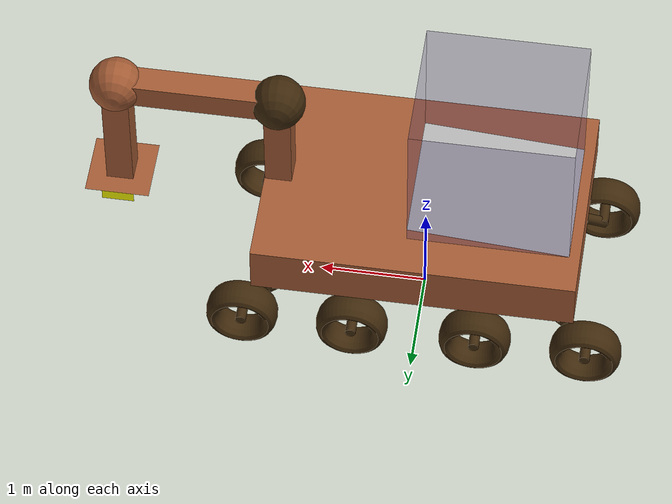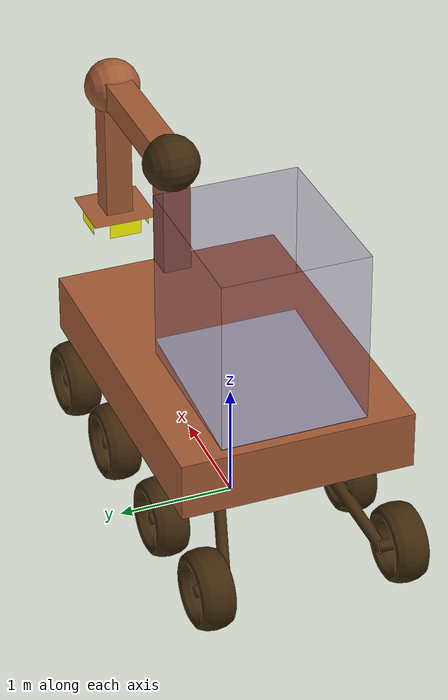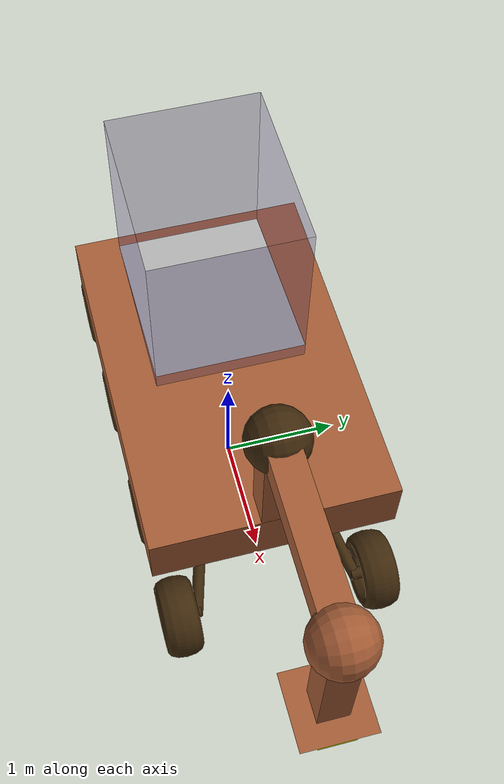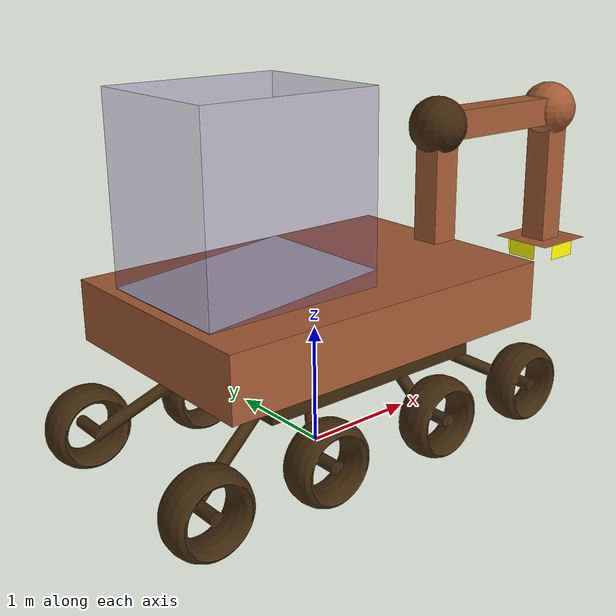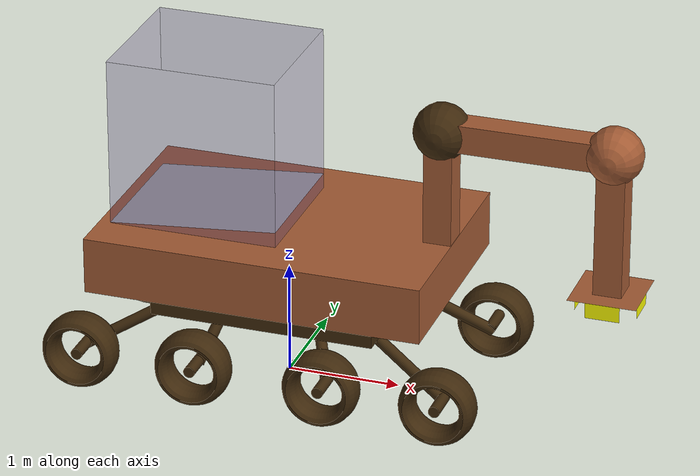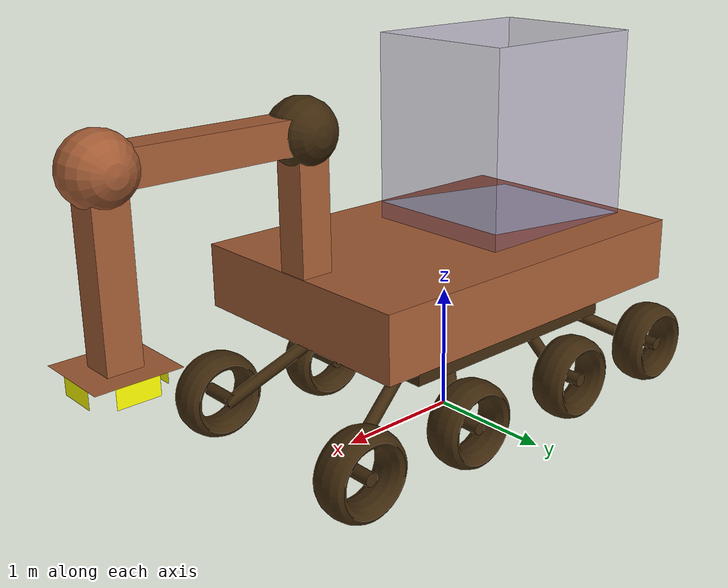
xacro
<?xml version="1.0"?>
<!-- created with Phobos 1.0.1 "Capricious Choutengan" -->
<robot name="robot" xmlns:xacro="http://wiki.ros.org/xacro">

    <link name="box_arm_1_">
      <inertial>
        <origin xyz="0 0 0" rpy="0 0 0"/>
        <mass value="10.0"/>
        <inertia ixx="0.88542" ixy="0" ixz="0" iyy="0.88542" iyz="0" izz="0.10417"/>
      </inertial>
      <visual name="box_arm_1">
        <origin xyz="0 0 0" rpy="0 0 0"/>
        <geometry>
          <box size="0.25 0.25 1.0"/>
        </geometry>
        <material name="Material"/>
      </visual>
      <collision name="box_arm_1">
        <origin xyz="0 0 0" rpy="0 0 0"/>
        <geometry>
          <box size="0.25 0.25 1.0"/>
        </geometry>
      </collision>
    </link>

    <link name="box_arm_2_">
      <inertial>
        <origin xyz="0 0 0" rpy="0 0 0"/>
        <mass value="3.0"/>
        <inertia ixx="0.05208" ixy="0" ixz="0" iyy="0.96354" iyz="0" izz="0.96354"/>
      </inertial>
      <visual name="box_arm_2">
        <origin xyz="0 0 0" rpy="-1.5708 0 0"/>
        <geometry>
          <box size="0.25 0.25 1.5"/>
        </geometry>
        <material name="Material"/>
      </visual>
      <collision name="box_arm_2">
        <origin xyz="0 0 0" rpy="-1.5708 0 0"/>
        <geometry>
          <box size="0.25 0.25 1.5"/>
        </geometry>
      </collision>
    </link>

    <link name="box_arm_3_">
      <inertial>
        <origin xyz="0 0 0" rpy="0 0 0"/>
        <mass value="3.0"/>
        <inertia ixx="0.62604" ixy="0" ixz="0" iyy="0.62604" iyz="0" izz="0.05208"/>
      </inertial>
      <visual name="box_arm_3">
        <origin xyz="0 0 0" rpy="-1.5708 0 0"/>
        <geometry>
          <box size="0.25 0.25 1.2"/>
        </geometry>
        <material name="Material"/>
      </visual>
      <collision name="box_arm_3">
        <origin xyz="0 0 0" rpy="-1.5708 0 0"/>
        <geometry>
          <box size="0.25 0.25 1.2"/>
        </geometry>
      </collision>
    </link>

    <link name="box_botton">
      <inertial>
        <origin xyz="0 0 0" rpy="0 0 0"/>
        <mass value="100.0"/>
        <inertia ixx="62.5" ixy="0" ixz="0" iyy="33.61816" iyz="0" izz="0.61035"/>
      </inertial>
      <visual name="Cube.001">
        <origin xyz="0 0 0" rpy="0 0 0"/>
        <geometry>
          <box size="2.0 1.5 0.5"/>
        </geometry>
        <material name="Material.001"/>
      </visual>
      <collision name="Cube.001">
        <origin xyz="0 0 0" rpy="0 0 0"/>
        <geometry>
          <box size="2.0 1.5 0.5"/>
        </geometry>
      </collision>
    </link>

    <link name="base_link">
      <inertial>
        <origin xyz="0 0 0" rpy="0 0 0"/>
        <mass value="150.0"/>
        <inertia ixx="896.48435" ixy="0" ixz="0" iyy="385.41666" iyz="0" izz="2.11589"/>
      </inertial>
      <visual name="Cube">
        <origin xyz="0 0 0" rpy="0 0 0"/>
        <geometry>
          <box size="3.0 2.0 0.5"/>
        </geometry>
        <material name="Material"/>
      </visual>
      <collision name="Cube">
        <origin xyz="0 0 0" rpy="0 0 0"/>
        <geometry>
          <box size="3.0 2.0 0.5"/>
        </geometry>
      </collision>
    </link>

    <link name="base_footprint">
      <inertial>
        <origin xyz="0 0 0" rpy="0 0 0"/>
        <mass value="0.1"/>
        <inertia ixx="0.001" ixy="0" ixz="0" iyy="0.001" iyz="0" izz="0.001"/>
      </inertial>
    </link>

    <link name="c2_felt_front_back_">
      <inertial>
        <origin xyz="0 0 0" rpy="0 0 0"/>
        <mass value="1.5"/>
        <inertia ixx="2e-05" ixy="0" ixz="0" iyy="2e-05" iyz="0" izz="8e-05"/>
      </inertial>
      <visual name="left_front_back2">
        <origin xyz="0 0 0" rpy="0 0 0"/>
        <geometry>
          <cylinder radius="0.05" length="0.3"/>
        </geometry>
        <material name="Material.001"/>
      </visual>
      <collision name="left_front_back2">
        <origin xyz="0 0 0" rpy="0 0 0"/>
        <geometry>
          <box size="0.1 0.1 0.3"/>
        </geometry>
      </collision>
    </link>

    <link name="c2_left_back_back_">
      <inertial>
        <origin xyz="0 0 0" rpy="0 0 0"/>
        <mass value="1.5"/>
        <inertia ixx="2e-05" ixy="0" ixz="0" iyy="2e-05" iyz="0" izz="8e-05"/>
      </inertial>
      <visual name="left_back_back2">
        <origin xyz="0 0 0" rpy="0 0 0"/>
        <geometry>
          <cylinder radius="0.05" length="0.3"/>
        </geometry>
        <material name="Material.001"/>
      </visual>
      <collision name="left_back_back2">
        <origin xyz="0 0 0" rpy="0 0 0"/>
        <geometry>
          <box size="0.1 0.1 0.3"/>
        </geometry>
      </collision>
    </link>

    <link name="c2_left_back_front_">
      <inertial>
        <origin xyz="0 0 0" rpy="0 0 0"/>
        <mass value="1.5"/>
        <inertia ixx="2e-05" ixy="0" ixz="0" iyy="2e-05" iyz="0" izz="8e-05"/>
      </inertial>
      <visual name="left_back_front2">
        <origin xyz="0 0 0" rpy="0 0 0"/>
        <geometry>
          <cylinder radius="0.05" length="0.3"/>
        </geometry>
        <material name="Material.001"/>
      </visual>
      <collision name="left_back_front2">
        <origin xyz="0 0 0" rpy="0 0 0"/>
        <geometry>
          <box size="0.1 0.1 0.3"/>
        </geometry>
      </collision>
    </link>

    <link name="c2_left_front_front_">
      <inertial>
        <origin xyz="0 0 0" rpy="0 0 0"/>
        <mass value="1.5"/>
        <inertia ixx="2e-05" ixy="0" ixz="0" iyy="2e-05" iyz="0" izz="8e-05"/>
      </inertial>
      <visual name="left_front_front2">
        <origin xyz="0 0 0" rpy="0 0 0"/>
        <geometry>
          <cylinder radius="0.05" length="0.3"/>
        </geometry>
        <material name="Material.001"/>
      </visual>
      <collision name="left_front_front2">
        <origin xyz="0 0 0" rpy="0 0 0"/>
        <geometry>
          <box size="0.1 0.1 0.3"/>
        </geometry>
      </collision>
    </link>

    <link name="c2_right_back_back">
      <inertial>
        <origin xyz="0 0 0" rpy="0 0 0"/>
        <mass value="1.5"/>
        <inertia ixx="0.0125" ixy="0" ixz="0" iyy="0.0025" iyz="0" izz="0.0125"/>
      </inertial>
      <visual name="right_back_back2">
        <origin xyz="0 0 0" rpy="-3.14159 0 0"/>
        <geometry>
          <cylinder radius="0.05" length="0.3"/>
        </geometry>
        <material name="Material.001"/>
      </visual>
      <collision name="right_back_back2">
        <origin xyz="0 0 0" rpy="-3.14159 0 0"/>
        <geometry>
          <box size="0.1 0.1 0.3"/>
        </geometry>
      </collision>
    </link>

    <link name="c2_right_back_front">
      <inertial>
        <origin xyz="0 0 0" rpy="0 0 0"/>
        <mass value="1.5"/>
        <inertia ixx="2e-05" ixy="0" ixz="0" iyy="2e-05" iyz="0" izz="8e-05"/>
      </inertial>
      <visual name="right_back_front2">
        <origin xyz="0 0 0" rpy="-3.14159 0 0"/>
        <geometry>
          <cylinder radius="0.05" length="0.3"/>
        </geometry>
        <material name="Material.001"/>
      </visual>
      <collision name="right_back_front2">
        <origin xyz="0 0 0" rpy="-3.14159 0 0"/>
        <geometry>
          <box size="0.1 0.1 0.3"/>
        </geometry>
      </collision>
    </link>

    <link name="c2_right_front_back">
      <inertial>
        <origin xyz="0 0 0" rpy="0 0 0"/>
        <mass value="1.5"/>
        <inertia ixx="2e-05" ixy="0" ixz="0" iyy="2e-05" iyz="0" izz="2e-05"/>
      </inertial>
      <visual name="right_front_back2">
        <origin xyz="0 0 0" rpy="-3.14159 0 0"/>
        <geometry>
          <cylinder radius="0.05" length="0.3"/>
        </geometry>
        <material name="Material.001"/>
      </visual>
      <collision name="right_front_back2">
        <origin xyz="0 0 0" rpy="-3.14159 0 0"/>
        <geometry>
          <box size="0.1 0.1 0.3"/>
        </geometry>
      </collision>
    </link>

    <link name="c2_right_front_front">
      <inertial>
        <origin xyz="0 0 0" rpy="0 0 0"/>
        <mass value="1.5"/>
        <inertia ixx="2e-05" ixy="0" ixz="0" iyy="2e-05" iyz="0" izz="8e-05"/>
      </inertial>
      <visual name="right_front_front2">
        <origin xyz="0 0 0" rpy="-3.14159 0 0"/>
        <geometry>
          <cylinder radius="0.05" length="0.3"/>
        </geometry>
        <material name="Material.001"/>
      </visual>
      <collision name="right_front_front2">
        <origin xyz="0 0 0" rpy="-3.14159 0 0"/>
        <geometry>
          <box size="0.1 0.1 0.3"/>
        </geometry>
      </collision>
    </link>

    <link name="c_left_back_back_">
      <inertial>
        <origin xyz="0 0 0" rpy="0 0 0"/>
        <mass value="1.5"/>
        <inertia ixx="2e-05" ixy="0" ixz="-0.00024" iyy="2e-05" iyz="8e-05" izz="0.08378"/>
      </inertial>
      <visual name="Cylinder.002">
        <origin xyz="0 0 0" rpy="0 0 0"/>
        <geometry>
          <cylinder radius="0.05" length="0.94"/>
        </geometry>
        <material name="Material.001"/>
      </visual>
      <collision name="Cylinder.002">
        <origin xyz="0 0 0" rpy="0 0 0"/>
        <geometry>
          <box size="0.1 0.1 0.94"/>
        </geometry>
      </collision>
    </link>

    <link name="c_left_back_front_">
      <inertial>
        <origin xyz="0 0 0" rpy="0 0 0"/>
        <mass value="1.5"/>
        <inertia ixx="2e-05" ixy="0" ixz="-2e-05" iyy="2e-05" iyz="3e-05" izz="0.00164"/>
      </inertial>
      <visual name="Cylinder.005">
        <origin xyz="0 0 0" rpy="0 0 0"/>
        <geometry>
          <cylinder radius="0.05" length="0.55"/>
        </geometry>
        <material name="Material.001"/>
      </visual>
      <collision name="Cylinder.005">
        <origin xyz="0 0 0" rpy="0 0 0"/>
        <geometry>
          <box size="0.1 0.1 0.55"/>
        </geometry>
      </collision>
    </link>

    <link name="c_left_front_back_">
      <inertial>
        <origin xyz="0 0 0" rpy="0 0 0"/>
        <mass value="1.5"/>
        <inertia ixx="2e-05" ixy="0" ixz="2e-05" iyy="2e-05" iyz="3e-05" izz="0.00164"/>
      </inertial>
      <visual name="Cylinder.004">
        <origin xyz="0 0 0" rpy="0 0 0"/>
        <geometry>
          <cylinder radius="0.05" length="0.55"/>
        </geometry>
        <material name="Material.001"/>
      </visual>
      <collision name="Cylinder.004">
        <origin xyz="0 0 0" rpy="0 0 0"/>
        <geometry>
          <box size="0.1 0.1 0.55"/>
        </geometry>
      </collision>
    </link>

    <link name="c_left_front_front_">
      <inertial>
        <origin xyz="0 0 0" rpy="0 0 0"/>
        <mass value="1.5"/>
        <inertia ixx="2e-05" ixy="0" ixz="0.00024" iyy="2e-05" iyz="8e-05" izz="0.08378"/>
      </inertial>
      <visual name="Cylinder">
        <origin xyz="0 0 0" rpy="0 0 0"/>
        <geometry>
          <cylinder radius="0.05" length="0.94"/>
        </geometry>
        <material name="Material.001"/>
      </visual>
      <collision name="Cylinder">
        <origin xyz="0 0 0" rpy="0 0 0"/>
        <geometry>
          <box size="0.1 0.1 0.94"/>
        </geometry>
      </collision>
    </link>

    <link name="c_right_back_back_">
      <inertial>
        <origin xyz="0 0 0" rpy="0 0 0"/>
        <mass value="1.5"/>
        <inertia ixx="2e-05" ixy="0" ixz="-0.00024" iyy="2e-05" iyz="-8e-05" izz="0.08378"/>
      </inertial>
      <visual name="Cylinder.001">
        <origin xyz="0 0 0" rpy="0 0 0"/>
        <geometry>
          <cylinder radius="0.05" length="0.94"/>
        </geometry>
        <material name="Material.001"/>
      </visual>
      <collision name="Cylinder.001">
        <origin xyz="0 0 0" rpy="0 0 0"/>
        <geometry>
          <box size="0.1 0.1 0.94"/>
        </geometry>
      </collision>
    </link>

    <link name="c_right_back_front_">
      <inertial>
        <origin xyz="0 0 0" rpy="0 0 0"/>
        <mass value="1.5"/>
        <inertia ixx="2e-05" ixy="0" ixz="-2e-05" iyy="2e-05" iyz="-3e-05" izz="0.00164"/>
      </inertial>
      <visual name="Cylinder.006">
        <origin xyz="0 0 0" rpy="0 0 0"/>
        <geometry>
          <cylinder radius="0.05" length="0.55"/>
        </geometry>
        <material name="Material.001"/>
      </visual>
      <collision name="Cylinder.006">
        <origin xyz="0 0 0" rpy="0 0 0"/>
        <geometry>
          <box size="0.1 0.1 0.55"/>
        </geometry>
      </collision>
    </link>

    <link name="c_right_front_back">
      <inertial>
        <origin xyz="0 0 0" rpy="0 0 0"/>
        <mass value="1.5"/>
        <inertia ixx="2e-05" ixy="0" ixz="2e-05" iyy="2e-05" iyz="-3e-05" izz="0.00164"/>
      </inertial>
      <visual name="Cylinder.007">
        <origin xyz="0 0 0" rpy="0 0 0"/>
        <geometry>
          <cylinder radius="0.05" length="0.55"/>
        </geometry>
        <material name="Material.001"/>
      </visual>
      <collision name="Cylinder.007">
        <origin xyz="0 0 0" rpy="0 0 0"/>
        <geometry>
          <box size="0.1 0.1 0.55"/>
        </geometry>
      </collision>
    </link>

    <link name="c_right_front_front_">
      <inertial>
        <origin xyz="0 0 0" rpy="0 0 0"/>
        <mass value="1.5"/>
        <inertia ixx="2e-05" ixy="0" ixz="0.00024" iyy="2e-05" iyz="-8e-05" izz="0.08378"/>
      </inertial>
      <visual name="Cylinder.003">
        <origin xyz="0 0 0" rpy="0 0 0"/>
        <geometry>
          <cylinder radius="0.05" length="0.94"/>
        </geometry>
        <material name="Material.001"/>
      </visual>
      <collision name="Cylinder.003">
        <origin xyz="0 0 0" rpy="0 0 0"/>
        <geometry>
          <box size="0.1 0.1 0.94"/>
        </geometry>
      </collision>
    </link>

    <link name="end_effector_">
      <inertial>
        <origin xyz="0 0 0" rpy="0 0 0"/>
        <mass value="1.0"/>
        <inertia ixx="0.10417" ixy="0" ixz="0" iyy="0.10417" iyz="0" izz="0.20833"/>
      </inertial>
      <visual name="end_effector">
        <origin xyz="0 0 0" rpy="0 0 0"/>
        <geometry>
          <box size="0.6 0.6 0"/>
        </geometry>
        <material name="Material"/>
      </visual>
      <collision name="end_effector">
        <origin xyz="0 0 0" rpy="0 0 0"/>
        <geometry>
          <box size="0.6 0.6 0"/>
        </geometry>
      </collision>
    </link>

    <link name="end_effector_back_">
      <inertial>
        <origin xyz="0 0 0" rpy="0 0 0"/>
        <mass value="2.0"/>
        <inertia ixx="0.04688" ixy="0" ixz="0" iyy="0.00938" iyz="0" izz="0.0375"/>
      </inertial>
      <visual name="end_effector_back">
        <origin xyz="0 -0.05 0" rpy="-1.5708 0 0"/>
        <geometry>
          <box size="0.15 0.3 0"/>
        </geometry>
        <material name="phobos_indicator5"/>
      </visual>
      <collision name="end_effector_back">
        <origin xyz="0 -0.05 0" rpy="-1.5708 0 0"/>
        <geometry>
          <box size="0.15 0.3 0"/>
        </geometry>
      </collision>
    </link>

    <link name="end_effector_left_">
      <inertial>
        <origin xyz="0 0 0" rpy="0 0 0"/>
        <mass value="2.0"/>
        <inertia ixx="0.00938" ixy="0" ixz="0" iyy="0.04688" iyz="0" izz="0.0375"/>
      </inertial>
      <visual name="end_effector_left">
        <origin xyz="-0.04 0 0" rpy="0 1.5708 0"/>
        <geometry>
          <box size="0.3 0.15 0"/>
        </geometry>
        <material name="phobos_indicator5"/>
      </visual>
      <collision name="end_effector_left">
        <origin xyz="-0.04 0 0" rpy="0 1.5708 0"/>
        <geometry>
          <box size="0.3 0.15 0"/>
        </geometry>
      </collision>
    </link>

    <link name="end_effector_right_">
      <inertial>
        <origin xyz="0 0 0" rpy="0 0 0"/>
        <mass value="2.0"/>
        <inertia ixx="0.00938" ixy="0" ixz="0" iyy="0.04688" iyz="0" izz="0.0375"/>
      </inertial>
      <visual name="end_effector_right">
        <origin xyz="-0.04 0 0" rpy="0 -1.5708 0"/>
        <geometry>
          <box size="0.3 0.15 0"/>
        </geometry>
        <material name="phobos_indicator5"/>
      </visual>
      <collision name="end_effector_right">
        <origin xyz="-0.04 0 0" rpy="0 -1.5708 0"/>
        <geometry>
          <box size="0.3 0.15 0"/>
        </geometry>
      </collision>
    </link>

    <link name="end_effector_top_">
      <inertial>
        <origin xyz="0 0 0" rpy="0 0 0"/>
        <mass value="2.0"/>
        <inertia ixx="0.0375" ixy="0" ixz="0" iyy="0.04688" iyz="0" izz="0.00938"/>
      </inertial>
      <visual name="end_effector_top">
        <origin xyz="0.05 0 0" rpy="1.5708 0 1.5708"/>
        <geometry>
          <box size="0.15 0.3 0"/>
        </geometry>
        <material name="phobos_indicator5"/>
      </visual>
      <collision name="end_effector_top">
        <origin xyz="0.05 0 0" rpy="1.5708 0 1.5708"/>
        <geometry>
          <box size="0.15 0.3 0"/>
        </geometry>
      </collision>
    </link>

    <link name="sphere_arm_1_">
      <inertial>
        <origin xyz="0 0 0" rpy="0 0 0"/>
        <mass value="10.0"/>
        <inertia ixx="0.00488" ixy="0" ixz="0" iyy="0.00488" iyz="0" izz="0.00488"/>
      </inertial>
      <visual name="sphere_arm_1">
        <origin xyz="0 0 0" rpy="0 0 0"/>
        <geometry>
          <sphere radius="0.25"/>
        </geometry>
        <material name="Material.001"/>
      </visual>
      <collision name="sphere_arm_1">
        <origin xyz="0 0 0" rpy="0 0 0"/>
        <geometry>
          <box size="0.5 0.5 0.5"/>
        </geometry>
      </collision>
    </link>

    <link name="sphere_arm_2_">
      <inertial>
        <origin xyz="0 0 0" rpy="0 0 0"/>
        <mass value="5.0"/>
        <inertia ixx="0.00049" ixy="0" ixz="0" iyy="0.00049" iyz="0" izz="0.00049"/>
      </inertial>
      <visual name="sphere_arm_2">
        <origin xyz="0 0 0" rpy="0 0 0"/>
        <geometry>
          <sphere radius="0.25"/>
        </geometry>
        <material name="Material"/>
      </visual>
      <collision name="sphere_arm_2">
        <origin xyz="0 0 0" rpy="0 0 0"/>
        <geometry>
          <box size="0.5 0.5 0.5"/>
        </geometry>
      </collision>
    </link>

    <link name="wall_back_">
      <inertial>
        <origin xyz="0 0 0" rpy="0 0 0"/>
        <mass value="0.1"/>
        <inertia ixx="1.58854" ixy="0" ixz="0" iyy="0.9375" iyz="0" izz="0.65104"/>
      </inertial>
      <visual name="wall_back">
        <origin xyz="0 0 0" rpy="0 0 0"/>
        <geometry>
          <box size="1.5 1.25 0"/>
        </geometry>
        <material name="phobos_controller"/>
      </visual>
      <collision name="wall_back">
        <origin xyz="0 0 0" rpy="0 0 0"/>
        <geometry>
          <box size="1.5 1.25 0"/>
        </geometry>
      </collision>
    </link>

    <link name="wall_left_">
      <inertial>
        <origin xyz="0 0 0" rpy="0 0 0"/>
        <mass value="0.1"/>
        <inertia ixx="0.9375" ixy="0" ixz="0" iyy="1.875" iyz="0" izz="0.9375"/>
      </inertial>
      <visual name="wall_left">
        <origin xyz="0 0 0" rpy="0 0 0"/>
        <geometry>
          <box size="1.5 1.5 0"/>
        </geometry>
        <material name="phobos_controller"/>
      </visual>
      <collision name="wall_left">
        <origin xyz="0 0 0" rpy="0 0 0"/>
        <geometry>
          <box size="1.5 1.5 0"/>
        </geometry>
      </collision>
    </link>

    <link name="wall_ramp_">
      <inertial>
        <origin xyz="0 0 0" rpy="0 0 0"/>
        <mass value="0.1"/>
        <inertia ixx="0.65821" ixy="0" ixz="-0.08194" iyy="0.94376" iyz="0" izz="1.58763"/>
      </inertial>
      <visual name="wall_ramp">
        <origin xyz="0 0 0" rpy="0 0 0"/>
        <geometry>
          <box size="1.505 1.25 0"/>
        </geometry>
      </visual>
      <collision name="wall_ramp">
        <origin xyz="0 0 0" rpy="0 0 0"/>
        <geometry>
          <box size="1.505 1.25 0"/>
        </geometry>
      </collision>
    </link>

    <link name="wall_right_">
      <inertial>
        <origin xyz="0 0 0" rpy="0 0 0"/>
        <mass value="0.1"/>
        <inertia ixx="0.9375" ixy="0" ixz="0" iyy="1.875" iyz="0" izz="0.9375"/>
      </inertial>
      <visual name="wall_right">
        <origin xyz="0 0 0" rpy="0 0 0"/>
        <geometry>
          <box size="1.5 1.5 0"/>
        </geometry>
        <material name="phobos_controller"/>
      </visual>
      <collision name="wall_right">
        <origin xyz="0 0 0" rpy="0 0 0"/>
        <geometry>
          <box size="1.5 1.5 0"/>
        </geometry>
      </collision>
    </link>

    <link name="wall_top_">
      <inertial>
        <origin xyz="0 0 0" rpy="0 0 0"/>
        <mass value="0.1"/>
        <inertia ixx="1.58854" ixy="0" ixz="0" iyy="0.9375" iyz="0" izz="0.65104"/>
      </inertial>
      <visual name="wall_top">
        <origin xyz="0 0 0" rpy="0 0 0"/>
        <geometry>
          <box size="1.5 1.25 0"/>
        </geometry>
        <material name="phobos_controller"/>
      </visual>
      <collision name="wall_top">
        <origin xyz="0 0 0" rpy="0 0 0"/>
        <geometry>
          <box size="1.5 1.25 0"/>
        </geometry>
      </collision>
    </link>

    <link name="wheel_left_back_back_">
      <inertial>
        <origin xyz="0 0 0" rpy="0 0 0"/>
        <mass value="10.0"/>
        <inertia ixx="0.0201" ixy="0" ixz="0" iyy="0.03887" iyz="0" izz="0.49015"/>
      </inertial>
      <visual name="wheel_left_back_back">
        <origin xyz="0 0 0" rpy="-3.14159 0 0"/>
        <geometry>
          <mesh filename="file://$(find practica3)/meshes/dae/Torus.003.dae" scale="0.27 0.27 0.6"/>
        </geometry>
        <material name="Material.001"/>
      </visual>
      <collision name="wheel_left_back_back.000">
        <origin xyz="0 0 0" rpy="-3.14159 0 0"/>
        <geometry>
          <mesh filename="file://$(find practica3)/meshes/dae/Torus.011.dae" scale="1.0 1.0 1.0"/>
        </geometry>
      </collision>
    </link>

    <link name="wheel_left_back_front_">
      <inertial>
        <origin xyz="0 0 0" rpy="0 0 0"/>
        <mass value="10.0"/>
        <inertia ixx="0.0201" ixy="0" ixz="0" iyy="0.03887" iyz="0" izz="0.49015"/>
      </inertial>
      <visual name="wheel_left_back_front">
        <origin xyz="0 0 0" rpy="-3.14159 0 0"/>
        <geometry>
          <mesh filename="file://$(find practica3)/meshes/dae/Torus.007.dae" scale="0.27 0.27 0.6"/>
        </geometry>
        <material name="Material.001"/>
      </visual>
      <collision name="wheel_left_back_front.000">
        <origin xyz="0 0 0" rpy="-3.14159 0 0"/>
        <geometry>
          <mesh filename="file://$(find practica3)/meshes/dae/Torus.010.dae" scale="1.0 1.0 1.0"/>
        </geometry>
      </collision>
    </link>

    <link name="wheel_left_front_back_">
      <inertial>
        <origin xyz="0 0 0" rpy="0 0 0"/>
        <mass value="10.0"/>
        <inertia ixx="0.0201" ixy="0" ixz="0" iyy="0.03887" iyz="0" izz="0.49015"/>
      </inertial>
      <visual name="wheel_left_front_back">
        <origin xyz="0 0 0" rpy="-3.14159 0 0"/>
        <geometry>
          <mesh filename="file://$(find practica3)/meshes/dae/Torus.005.dae" scale="0.27 0.27 0.6"/>
        </geometry>
        <material name="Material.001"/>
      </visual>
      <collision name="wheel_left_front_back.000">
        <origin xyz="0 0 0" rpy="-3.14159 0 0"/>
        <geometry>
          <mesh filename="file://$(find practica3)/meshes/dae/Torus.009.dae" scale="1.0 1.0 1.0"/>
        </geometry>
      </collision>
    </link>

    <link name="wheel_left_front_front_">
      <inertial>
        <origin xyz="0 0 0" rpy="0 0 0"/>
        <mass value="10.0"/>
        <inertia ixx="0.0201" ixy="0" ixz="0" iyy="0.03887" iyz="0" izz="0.49015"/>
      </inertial>
      <visual name="wheel_left_front_front">
        <origin xyz="0 0 0" rpy="-3.14159 0 0"/>
        <geometry>
          <mesh filename="file://$(find practica3)/meshes/dae/Torus.dae" scale="0.27 0.27 0.6"/>
        </geometry>
        <material name="Material.001"/>
      </visual>
      <collision name="wheel_left_front_front.000">
        <origin xyz="0 0 0" rpy="-3.14159 0 0"/>
        <geometry>
          <mesh filename="file://$(find practica3)/meshes/dae/Torus.008.dae" scale="1.0 1.0 1.0"/>
        </geometry>
      </collision>
    </link>

    <link name="wheel_right_back_back_">
      <inertial>
        <origin xyz="0 0 0" rpy="0 0 0"/>
        <mass value="10.0"/>
        <inertia ixx="0.0201" ixy="0" ixz="0" iyy="0.03887" iyz="0" izz="0.49015"/>
      </inertial>
      <visual name="wheel_right_back_back">
        <origin xyz="0 0 0" rpy="0 0 0"/>
        <geometry>
          <mesh filename="file://$(find practica3)/meshes/dae/Torus.002.dae" scale="0.27 0.27 0.6"/>
        </geometry>
        <material name="Material.001"/>
      </visual>
      <collision name="wheel_right_back_back.000">
        <origin xyz="0 0 0" rpy="0 0 0"/>
        <geometry>
          <mesh filename="file://$(find practica3)/meshes/dae/Torus.012.dae" scale="1.0 1.0 1.0"/>
        </geometry>
      </collision>
    </link>

    <link name="wheel_right_back_front_">
      <inertial>
        <origin xyz="0 0 0" rpy="0 0 0"/>
        <mass value="10.0"/>
        <inertia ixx="0.0201" ixy="0" ixz="0" iyy="0.03887" iyz="0" izz="0.49015"/>
      </inertial>
      <visual name="wheel_right_back_front">
        <origin xyz="0 0 0" rpy="0 0 0"/>
        <geometry>
          <mesh filename="file://$(find practica3)/meshes/dae/Torus.006.dae" scale="0.27 0.27 0.6"/>
        </geometry>
        <material name="Material.001"/>
      </visual>
      <collision name="wheel_right_back_front.000">
        <origin xyz="0 0 0" rpy="0 0 0"/>
        <geometry>
          <mesh filename="file://$(find practica3)/meshes/dae/Torus.013.dae" scale="1.0 1.0 1.0"/>
        </geometry>
      </collision>
    </link>

    <link name="wheel_right_front_back_">
      <inertial>
        <origin xyz="0 0 0" rpy="0 0 0"/>
        <mass value="10.0"/>
        <inertia ixx="0.0201" ixy="0" ixz="0" iyy="0.03887" iyz="0" izz="0.49015"/>
      </inertial>
      <visual name="wheel_right_front_back">
        <origin xyz="0 0 0" rpy="0 0 0"/>
        <geometry>
          <mesh filename="file://$(find practica3)/meshes/dae/Torus.004.dae" scale="0.27 0.27 0.6"/>
        </geometry>
        <material name="Material.001"/>
      </visual>
      <collision name="wheel_right_front_back.000">
        <origin xyz="0 0 0" rpy="0 0 0"/>
        <geometry>
          <mesh filename="file://$(find practica3)/meshes/dae/Torus.014.dae" scale="1.0 1.0 1.0"/>
        </geometry>
      </collision>
    </link>

    <link name="wheel_right_front_front_">
      <inertial>
        <origin xyz="0 0 0" rpy="0 0 0"/>
        <mass value="10.0"/>
        <inertia ixx="0.0201" ixy="0" ixz="0" iyy="0.0201" iyz="0" izz="0.94798"/>
      </inertial>
      <visual name="wheel_right_front_front">
        <origin xyz="0 0 0" rpy="0 0 0"/>
        <geometry>
          <mesh filename="file://$(find practica3)/meshes/dae/Torus.001.dae" scale="0.27 0.27 0.6"/>
        </geometry>
        <material name="Material.001"/>
      </visual>
      <collision name="wheel_right_front_front.000">
        <origin xyz="0 0 0" rpy="0 0 0"/>
        <geometry>
          <mesh filename="file://$(find practica3)/meshes/dae/Torus.015.dae" scale="0.27 0.27 0.6"/>
        </geometry>
      </collision>
    </link>

    <joint name="base_link_" type="fixed">
      <origin xyz="0 0 1.235" rpy="0 0 0"/>
      <parent link="base_footprint"/>
      <child link="base_link"/>
    </joint>

    <joint name="box_arm_1_" type="continuous">
      <origin xyz="1.37 0 0.75" rpy="0 0 0"/>
      <parent link="base_link"/>
      <child link="box_arm_1_"/>
      <axis xyz="0 0 1.0"/>
      <limit effort="0" velocity="0"/>
    </joint>

    <joint name="box_arm_2_" type="fixed">
      <origin xyz="0.75 0 0" rpy="0 0 -1.5708"/>
      <parent link="sphere_arm_1_"/>
      <child link="box_arm_2_"/>
    </joint>

    <joint name="box_arm_3_" type="fixed">
      <origin xyz="0 -0.65 0" rpy="0 0 0"/>
      <parent link="sphere_arm_2_"/>
      <child link="box_arm_3_"/>
    </joint>

    <joint name="box_botton" type="fixed">
      <origin xyz="0 0 -0.25" rpy="0 0 0"/>
      <parent link="base_link"/>
      <child link="box_botton"/>
    </joint>

    <joint name="c2_felt_front_back_" type="fixed">
      <origin xyz="0.58 0.8 -0.9" rpy="1.5708 0 0"/>
      <parent link="base_link"/>
      <child link="c2_felt_front_back_"/>
    </joint>

    <joint name="c2_left_back_back_" type="fixed">
      <origin xyz="-1.62 0.8 -0.9" rpy="1.5708 0 0"/>
      <parent link="base_link"/>
      <child link="c2_left_back_back_"/>
    </joint>

    <joint name="c2_left_back_front_" type="fixed">
      <origin xyz="-0.58 0.8 -0.9" rpy="1.5708 0 0"/>
      <parent link="base_link"/>
      <child link="c2_left_back_front_"/>
    </joint>

    <joint name="c2_left_front_front_" type="fixed">
      <origin xyz="1.62 0.8 -0.9" rpy="1.5708 0 0"/>
      <parent link="base_link"/>
      <child link="c2_left_front_front_"/>
    </joint>

    <joint name="c2_right_back_back" type="fixed">
      <origin xyz="-1.62 -0.8 -0.9" rpy="-1.5708 0 0"/>
      <parent link="base_link"/>
      <child link="c2_right_back_back"/>
    </joint>

    <joint name="c2_right_back_front" type="fixed">
      <origin xyz="-0.58 -0.8 -0.9" rpy="-1.5708 0 0"/>
      <parent link="base_link"/>
      <child link="c2_right_back_front"/>
    </joint>

    <joint name="c2_right_front_back" type="fixed">
      <origin xyz="0.58 -0.8 -0.9" rpy="-1.5708 0 0"/>
      <parent link="base_link"/>
      <child link="c2_right_front_back"/>
    </joint>

    <joint name="c2_right_front_front" type="fixed">
      <origin xyz="1.62 -0.8 -0.9" rpy="-1.5708 0 0"/>
      <parent link="base_link"/>
      <child link="c2_right_front_front"/>
    </joint>

    <joint name="c_left_back_back_" type="fixed">
      <origin xyz="-1.25 0.57 -0.7" rpy="0.2618 1.0472 0"/>
      <parent link="base_link"/>
      <child link="c_left_back_back_"/>
    </joint>

    <joint name="c_left_back_front_" type="fixed">
      <origin xyz="-0.5 0.57 -0.7" rpy="0.5236 0.34907 0"/>
      <parent link="base_link"/>
      <child link="c_left_back_front_"/>
    </joint>

    <joint name="c_left_front_back_" type="fixed">
      <origin xyz="0.5 0.57 -0.7" rpy="0.5236 -0.34907 0"/>
      <parent link="base_link"/>
      <child link="c_left_front_back_"/>
    </joint>

    <joint name="c_left_front_front_" type="fixed">
      <origin xyz="1.25 0.57 -0.7" rpy="0.2618 -1.0472 0"/>
      <parent link="base_link"/>
      <child link="c_left_front_front_"/>
    </joint>

    <joint name="c_right_back_back_" type="fixed">
      <origin xyz="-1.25 -0.57 -0.7" rpy="-0.2618 1.0472 0"/>
      <parent link="base_link"/>
      <child link="c_right_back_back_"/>
    </joint>

    <joint name="c_right_back_front_" type="fixed">
      <origin xyz="-0.5 -0.57 -0.7" rpy="-0.5236 0.34907 0"/>
      <parent link="base_link"/>
      <child link="c_right_back_front_"/>
    </joint>

    <joint name="c_right_front_back" type="fixed">
      <origin xyz="0.5 -0.57 -0.7" rpy="-0.5236 -0.34907 0"/>
      <parent link="base_link"/>
      <child link="c_right_front_back"/>
    </joint>

    <joint name="c_right_front_front_" type="fixed">
      <origin xyz="1.25 -0.57 -0.7" rpy="-0.2618 -1.0472 0"/>
      <parent link="base_link"/>
      <child link="c_right_front_front_"/>
    </joint>

    <joint name="end_effector_" type="fixed">
      <origin xyz="0 -0.6 0" rpy="-1.5708 0 0"/>
      <parent link="box_arm_3_"/>
      <child link="end_effector_"/>
    </joint>

    <joint name="end_effector_back_" type="revolute">
      <origin xyz="-0.22 0 -0.08" rpy="1.5708 1.5708 0"/>
      <parent link="end_effector_"/>
      <child link="end_effector_back_"/>
      <axis xyz="0 0 1.0"/>
      <limit lower="0" upper="0.32" effort="0" velocity="0"/>
    </joint>

    <joint name="end_effector_left_" type="revolute">
      <origin xyz="0 0.225 -0.08" rpy="1.5708 0 -1.5708"/>
      <parent link="end_effector_"/>
      <child link="end_effector_left_"/>
      <axis xyz="0 0 1.0"/>
      <limit lower="0" upper="0.32" effort="0" velocity="0"/>
    </joint>

    <joint name="end_effector_right_" type="revolute">
      <origin xyz="0 -0.225 -0.08" rpy="1.5708 0 1.5708"/>
      <parent link="end_effector_"/>
      <child link="end_effector_right_"/>
      <axis xyz="0 0 1.0"/>
      <limit lower="0" upper="0.32" effort="0" velocity="0"/>
    </joint>

    <joint name="end_effector_top_" type="revolute">
      <origin xyz="0.22 0 -0.08" rpy="-1.5708 0 0"/>
      <parent link="end_effector_"/>
      <child link="end_effector_top_"/>
      <axis xyz="0 0 1.0"/>
      <limit lower="0" upper="0.32" effort="0" velocity="0"/>
    </joint>

    <joint name="sphere_arm_1_" type="revolute">
      <origin xyz="0 0 0.5" rpy="1.5708 0 0"/>
      <parent link="box_arm_1_"/>
      <child link="sphere_arm_1_"/>
      <axis xyz="0 0 1.0"/>
      <limit lower="-0.6" upper="1.57" effort="0" velocity="0"/>
    </joint>

    <joint name="sphere_arm_2_" type="revolute">
      <origin xyz="0 0.75 0" rpy="0 0 1.5708"/>
      <parent link="box_arm_2_"/>
      <child link="sphere_arm_2_"/>
      <axis xyz="0 0 1.0"/>
      <limit lower="0" upper="1.57" effort="0" velocity="0"/>
    </joint>

    <joint name="wall_back_" type="fixed">
      <origin xyz="-1.4 0 1.0" rpy="0 1.5708 0"/>
      <parent link="base_link"/>
      <child link="wall_back_"/>
    </joint>

    <joint name="wall_left_" type="fixed">
      <origin xyz="-0.65 0.625 1.0" rpy="1.5708 0 0"/>
      <parent link="base_link"/>
      <child link="wall_left_"/>
    </joint>

    <joint name="wall_ramp_" type="fixed">
      <origin xyz="-0.65 0 0.32" rpy="0 -0.08727 0"/>
      <parent link="base_link"/>
      <child link="wall_ramp_"/>
    </joint>

    <joint name="wall_right_" type="fixed">
      <origin xyz="-0.65 -0.625 1.0" rpy="-1.5708 0 0"/>
      <parent link="base_link"/>
      <child link="wall_right_"/>
    </joint>

    <joint name="wall_top_" type="fixed">
      <origin xyz="0.1 0 1.0" rpy="0 1.5708 0"/>
      <parent link="base_link"/>
      <child link="wall_top_"/>
    </joint>

    <joint name="wheel_left_back_back_" type="continuous">
      <origin xyz="-1.62 0.84 -0.9" rpy="-1.5708 0 0"/>
      <parent link="base_link"/>
      <child link="wheel_left_back_back_"/>
      <axis xyz="0 0 1.0"/>
      <limit effort="0" velocity="0"/>
    </joint>

    <joint name="wheel_left_back_front_" type="continuous">
      <origin xyz="-0.58 0.84 -0.9" rpy="-1.5708 0 0"/>
      <parent link="base_link"/>
      <child link="wheel_left_back_front_"/>
      <axis xyz="0 0 1.0"/>
      <limit effort="0" velocity="0"/>
    </joint>

    <joint name="wheel_left_front_back_" type="continuous">
      <origin xyz="0.58 0.84 -0.9" rpy="-1.5708 0 0"/>
      <parent link="base_link"/>
      <child link="wheel_left_front_back_"/>
      <axis xyz="0 0 1.0"/>
      <limit effort="0" velocity="0"/>
    </joint>

    <joint name="wheel_left_front_front_" type="continuous">
      <origin xyz="1.62 0.84 -0.9" rpy="-1.5708 0 0"/>
      <parent link="base_link"/>
      <child link="wheel_left_front_front_"/>
      <axis xyz="0 0 1.0"/>
      <limit effort="0" velocity="0"/>
    </joint>

    <joint name="wheel_right_back_back_" type="continuous">
      <origin xyz="-1.62 -0.84 -0.9" rpy="-1.5708 0 3.14159"/>
      <parent link="base_link"/>
      <child link="wheel_right_back_back_"/>
      <axis xyz="0 0 1.0"/>
      <limit effort="0" velocity="0"/>
    </joint>

    <joint name="wheel_right_back_front_" type="continuous">
      <origin xyz="-0.58 -0.84 -0.9" rpy="-1.5708 0 3.14159"/>
      <parent link="base_link"/>
      <child link="wheel_right_back_front_"/>
      <axis xyz="0 0 1.0"/>
      <limit effort="0" velocity="0"/>
    </joint>

    <joint name="wheel_right_front_back_" type="continuous">
      <origin xyz="0.58 -0.84 -0.9" rpy="-1.5708 0 3.14159"/>
      <parent link="base_link"/>
      <child link="wheel_right_front_back_"/>
      <axis xyz="0 0 1.0"/>
      <limit effort="0" velocity="0"/>
    </joint>

    <joint name="wheel_right_front_front_" type="continuous">
      <origin xyz="1.62 -0.84 -0.9" rpy="-1.5708 0 3.14159"/>
      <parent link="base_link"/>
      <child link="wheel_right_front_front_"/>
      <axis xyz="0 0 1.0"/>
      <limit effort="0" velocity="0"/>
    </joint>

    <xacro:include filename="$(find practica3)/urdf/sensor_imu.urdf.xacro" />
    <xacro:arg name="robot_ns" default="" />
    <xacro:arg name="prefix" default="" />

    <xacro:sensor_camera node_name="front_camera" node_namespace="$(arg robot_ns)" frame_prefix="$(arg prefix)front_camera_" parent="$(arg prefix)base_link" >
    <origin xyz="1.4 0.0 0.5" rpy="0 0 0"/>
    </xacro:sensor_camera>
    <xacro:sensor_camera node_name="arm_camera" node_namespace="$(arg robot_ns)" frame_prefix="$(arg prefix)arm_camera_" parent="$(arg prefix)end_effector_" >
    <origin xyz="0.0 0.0 -0.01" rpy="0 3.141592 0"/>
    </xacro:sensor_camera>
    <xacro:sensor_imu ns="$(arg robot_ns)" prefix="$(arg prefix)imu_" parent="$(arg prefix)base_link">
    <origin xyz="0.0 0.0 0.0" rpy="0 0 0"/>
    </xacro:sensor_imu>

    <material name="Material">
      <color rgba="0.64 0.35768 0.20581 1.0"/>
    </material>

    <material name="Material.001">
      <color rgba="0.24647 0.16006 0.04816 1.0"/>
    </material>

    <material name="phobos_controller">
      <color rgba="0.3626 0.2548 0.56 0.30000000000000004"/>
    </material>

    <material name="phobos_indicator5">
      <color rgba="1.0 1.0 0 1.0"/>
    </material>

  </robot>

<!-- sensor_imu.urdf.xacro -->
<robot xmlns:xacro="http://wiki.ros.org/xacro" name="sensors">
  <!--  ######## UTILS ########  -->
  <xacro:macro name="solid_cuboid_inertia" params="m w h d">
    <inertia ixx="${(m*(h*h+d*d))/12}" ixy="0" ixz="0" iyy="${(m*(w*w+d*d))/12}" iyz="0"
      izz="${(m*(w*w+h*h))/12}" />
  </xacro:macro>
  <!--  ######### IMU #########  -->
  <xacro:macro name="sensor_imu" params="prefix ns:='' topic:='imu/data' parent *origin">

    <joint name="${prefix}_joint" type="fixed">
      <axis xyz="1 0 0" />
      <!-- origin xyz="0 0 0.2825"/ -->
      <xacro:insert_block name="origin" />
      <parent link="${parent}" />
      <child link="${prefix}_link" />
    </joint>

    <link name="${prefix}_link">
      <inertial>
        <origin xyz="0.0 0 0.01" rpy="0 0 0" />
        <mass value="0.005" />
        <xacro:solid_cuboid_inertia m="0.005" w="0.001" h="0.001" d="0.001" />
      </inertial>
      <visual>
        <origin rpy="0 0 0" xyz="0 0 0" />
        <geometry>
          <box size="0.001 0.001 0.001" />
        </geometry>
      </visual>
    </link>

    <gazebo reference="${prefix}_link">
      <gravity>true</gravity>
      <sensor name="${prefix}_imu_sensor" type="imu">
        <always_on>true</always_on>
        <update_rate>100</update_rate>
        <visualize>true</visualize>
        <topic>__default_topic__</topic>
        <plugin filename="libgazebo_ros_imu_sensor.so" name="${prefix}_imu_plugin">
          <topicName>${topic}</topicName>
          <bodyName>${prefix}_link</bodyName>
          <updateRateHZ>100.0</updateRateHZ>
          <gaussianNoise>0.0</gaussianNoise>
          <xyzOffset>0 0 0</xyzOffset>
          <rpyOffset>0 0 0</rpyOffset>
          <frameName>${prefix}_link</frameName>
        </plugin>
        <pose>0 0 0 0 0 0</pose>
      </sensor>
    </gazebo>

  </xacro:macro>
  <!--  ####### CAMERA #######  -->
  <xacro:macro name="sensor_camera_generic"
    params="frame_prefix parent *origin node_name:=camera node_namespace:=${None} topic_prefix:=~/ horizontal_fov:=80 vertical_fov:=60 video_width:=1280 video_height:=720 video_fps:=30">
    <!--  node_namespace is used from node_name if not set  -->
    <xacro:if value="${node_namespace == None}">
      <xacro:property name="node_namespace" value="${node_name}" />
    </xacro:if>

    <joint name="${frame_prefix}camera_base_joint" type="fixed">
      <xacro:insert_block name="origin" />
      <parent link="${parent}" />
      <child link="${frame_prefix}camera_base_link" />
    </joint>

    <link name="${frame_prefix}camera_base_link">
      <visual>
        <origin xyz="0 0 0" rpy="0 0 0" />
        <geometry>
          <box size="0.025 0.05 0.025" />
        </geometry>
        <material name="light_grey">
          <color rgba="0.35 0.35 0.35 1" />
        </material>
      </visual>
      <collision>
        <origin xyz="0.0 0.0 0.0" rpy="0 0 0" />
        <geometry>
          <box size="0.025 0.05 0.025" />
        </geometry>
      </collision>
      <inertial>
        <mass value="0.135" />
        <origin xyz="0 0 0" />
        <xacro:solid_cuboid_inertia m="0.135" w="0.033" h="0.175" d="0.03" />
      </inertial>
    </link>

    <!--  Camera -->
    <joint name="${frame_prefix}camera_joint" type="fixed">
      <origin xyz="0.0 -0.06 0.0" rpy="0.0 0.0 0.0" />
      <parent link="${frame_prefix}camera_base_link" />
      <child link="${frame_prefix}camera_frame" />
    </joint>

    <link name="${frame_prefix}camera_frame" />

    <joint name="${frame_prefix}color_optical_joint" type="fixed">
      <origin xyz="0.0 0 0.0" rpy="${-pi/2} 0.0 ${-pi/2}" />
      <parent link="${frame_prefix}camera_frame" />
      <child link="${frame_prefix}camera_optical_frame" />
    </joint>

    <link name="${frame_prefix}camera_optical_frame" />

    <gazebo reference="${frame_prefix}camera_frame">
      <sensor name="${frame_prefix}sensor" type="camera">
        <pose>0.0 0.0 0.0 0.0 0.0 0.0</pose>
        <visualize>false</visualize>
        <update_rate>30</update_rate>
        <camera>
          <horizontal_fov>${radians(float(horizontal_fov))}</horizontal_fov>
          <vertical_fov>${radians(float(vertical_fov))}</vertical_fov>
          <image>
            <width>${video_width}</width>
            <height>${video_height}</height>
            <format>R8G8B8</format>
          </image>
          <clip>
            <near>0.10</near>
            <far>100.0</far>
          </clip>
          <noise>
            <type>gaussian</type>
            <mean>0.0</mean>
            <stddev>0.007</stddev>
          </noise>
        </camera>
        <plugin name="${node_name}_camera" filename="libgazebo_ros_camera.so">
          <ros>
            <namespace>${node_namespace}/${node_name}</namespace>
            <remapping>right/image_raw:=right/image_raw_color</remapping>
            <remapping>right/camera_info:=right/camera_info</remapping>
          </ros>
          <camera_name>camera1</camera_name>
          <frame_name>${node_namespace}/${frame_prefix}camera_optical_frame</frame_name>
        </plugin>
      </sensor>
    </gazebo>

  </xacro:macro>

  <xacro:macro name="sensor_camera"
    params="frame_prefix parent *origin node_namespace:=cameras node_name topic_prefix:=~/">
    <xacro:sensor_camera_generic frame_prefix="${frame_prefix}" parent="${parent}"
      node_namespace="${node_namespace}" node_name="${node_name}" topic_prefix="${topic_prefix}"
      horizontal_fov="110" vertical_fov="70" video_width="1920" video_height="1080" video_fps="30">
      <xacro:insert_block name="origin" />
    </xacro:sensor_camera_generic>
  </xacro:macro>

</robot>
